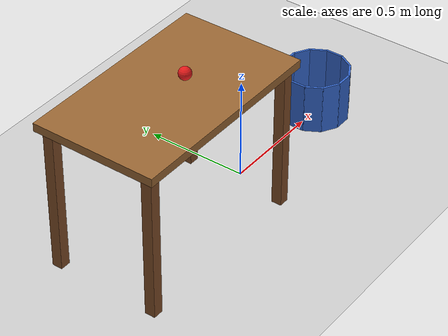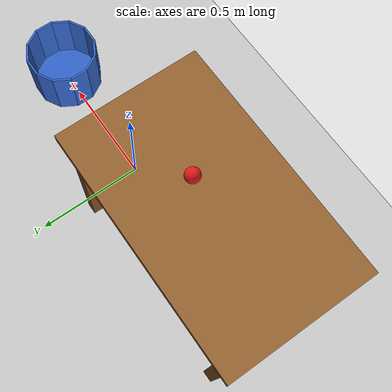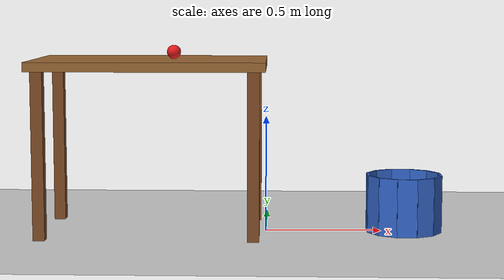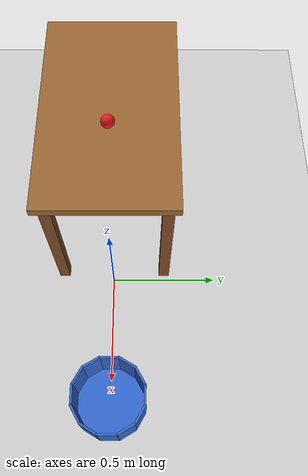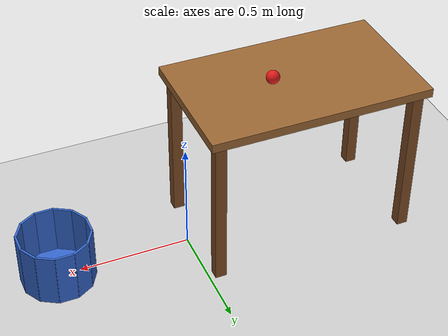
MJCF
<mujoco model="ball_off_table_into_bucket">
  <option timestep="0.002" gravity="0 0 -9.81"/>

  <visual>
    <global offwidth="1280" offheight="720"/>
  </visual>

  <worldbody>
    <light name="sun" pos="0 0 3" dir="0 0 -1" directional="true"/>
    <geom name="floor" type="plane" size="3 3 0.1" rgba="0.8 0.8 0.8 1"/>

    <!-- Table: top surface at z = 0.75, edge at x = 0 -->
    <body name="table" pos="0 0 0">
      <geom name="table_top" type="box" size="0.5 0.3 0.02" pos="-0.5 0 0.73" rgba="0.6 0.4 0.2 1" friction="1 0.005 0.0001" condim="3"/>
      <geom name="table_leg1" type="box" size="0.025 0.025 0.355" pos="-0.05 0.25 0.355" rgba="0.5 0.3 0.15 1"/>
      <geom name="table_leg2" type="box" size="0.025 0.025 0.355" pos="-0.05 -0.25 0.355" rgba="0.5 0.3 0.15 1"/>
      <geom name="table_leg3" type="box" size="0.025 0.025 0.355" pos="-0.95 0.25 0.355" rgba="0.5 0.3 0.15 1"/>
      <geom name="table_leg4" type="box" size="0.025 0.025 0.355" pos="-0.95 -0.25 0.355" rgba="0.5 0.3 0.15 1"/>
    </body>

    <!-- Bucket: centre 0.6 m beyond the table edge, inner radius ~0.15 m, rim at 0.25 m -->
    <body name="bucket" pos="0.6 0 0">
      <geom name="bucket_bottom" type="cylinder" size="0.16 0.01" pos="0 0 0.01" rgba="0.2 0.4 0.8 1" condim="6" friction="1 0.02 0.02"/>
      <geom name="bucket_wall0" type="box" size="0.005 0.044 0.125" pos="0.155 0 0.125" euler="0 0 0" rgba="0.2 0.4 0.8 1" condim="6" friction="1 0.02 0.02"/>
      <geom name="bucket_wall1" type="box" size="0.005 0.044 0.125" pos="0.13423 0.0775 0.125" euler="0 0 30" rgba="0.2 0.4 0.8 1" condim="6" friction="1 0.02 0.02"/>
      <geom name="bucket_wall2" type="box" size="0.005 0.044 0.125" pos="0.0775 0.13423 0.125" euler="0 0 60" rgba="0.2 0.4 0.8 1" condim="6" friction="1 0.02 0.02"/>
      <geom name="bucket_wall3" type="box" size="0.005 0.044 0.125" pos="0 0.155 0.125" euler="0 0 90" rgba="0.2 0.4 0.8 1" condim="6" friction="1 0.02 0.02"/>
      <geom name="bucket_wall4" type="box" size="0.005 0.044 0.125" pos="-0.0775 0.13423 0.125" euler="0 0 120" rgba="0.2 0.4 0.8 1" condim="6" friction="1 0.02 0.02"/>
      <geom name="bucket_wall5" type="box" size="0.005 0.044 0.125" pos="-0.13423 0.0775 0.125" euler="0 0 150" rgba="0.2 0.4 0.8 1" condim="6" friction="1 0.02 0.02"/>
      <geom name="bucket_wall6" type="box" size="0.005 0.044 0.125" pos="-0.155 0 0.125" euler="0 0 180" rgba="0.2 0.4 0.8 1" condim="6" friction="1 0.02 0.02"/>
      <geom name="bucket_wall7" type="box" size="0.005 0.044 0.125" pos="-0.13423 -0.0775 0.125" euler="0 0 210" rgba="0.2 0.4 0.8 1" condim="6" friction="1 0.02 0.02"/>
      <geom name="bucket_wall8" type="box" size="0.005 0.044 0.125" pos="-0.0775 -0.13423 0.125" euler="0 0 240" rgba="0.2 0.4 0.8 1" condim="6" friction="1 0.02 0.02"/>
      <geom name="bucket_wall9" type="box" size="0.005 0.044 0.125" pos="0 -0.155 0.125" euler="0 0 270" rgba="0.2 0.4 0.8 1" condim="6" friction="1 0.02 0.02"/>
      <geom name="bucket_wall10" type="box" size="0.005 0.044 0.125" pos="0.0775 -0.13423 0.125" euler="0 0 300" rgba="0.2 0.4 0.8 1" condim="6" friction="1 0.02 0.02"/>
      <geom name="bucket_wall11" type="box" size="0.005 0.044 0.125" pos="0.13423 -0.0775 0.125" euler="0 0 330" rgba="0.2 0.4 0.8 1" condim="6" friction="1 0.02 0.02"/>
    </body>

    <!-- Ball: radius 3 cm, resting on the table top -->
    <body name="ball" pos="-0.4 0 0.78">
      <freejoint name="ball_free"/>
      <geom name="ball" type="sphere" size="0.03" rgba="0.9 0.1 0.1 1" friction="1 0.001 0.001" condim="3"/>
    </body>
  </worldbody>

  <keyframe>
    <!-- Rolling without slipping: omega_y = v / r = 1.65 / 0.03 = 55 rad/s -->
    <key name="start" qpos="-0.4 0 0.78 1 0 0 0" qvel="1.65 0 0 0 55 0"/>
  </keyframe>
</mujoco>
